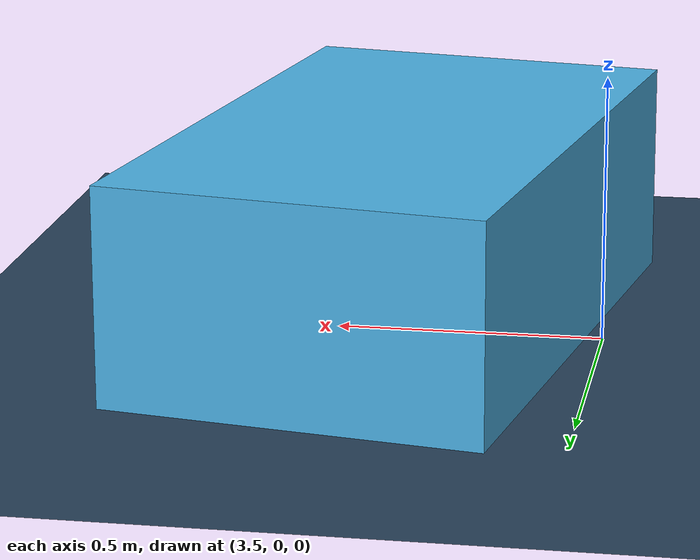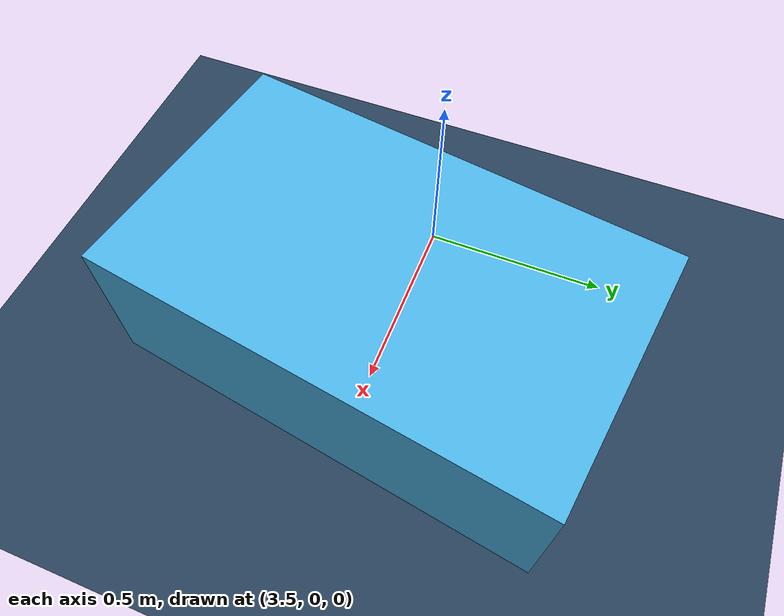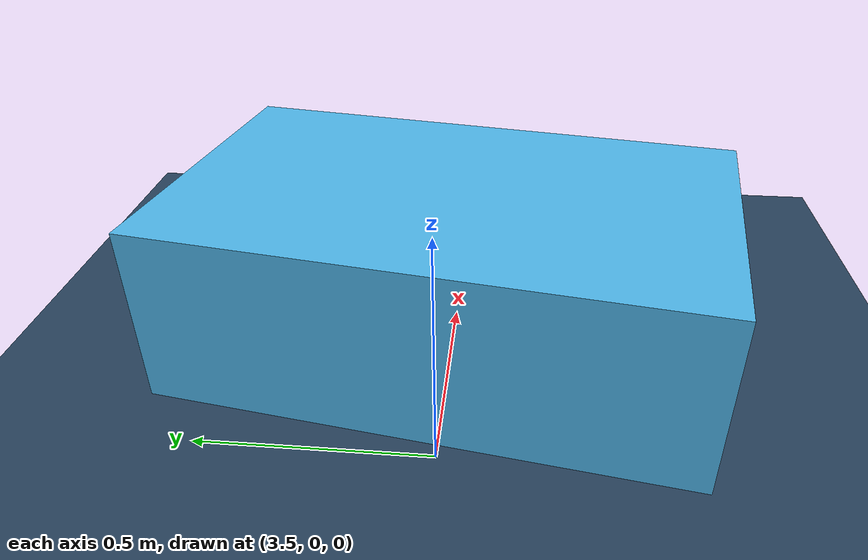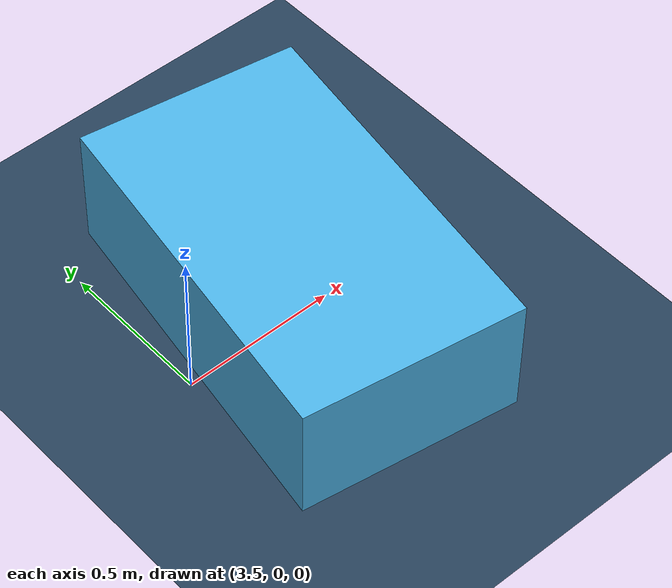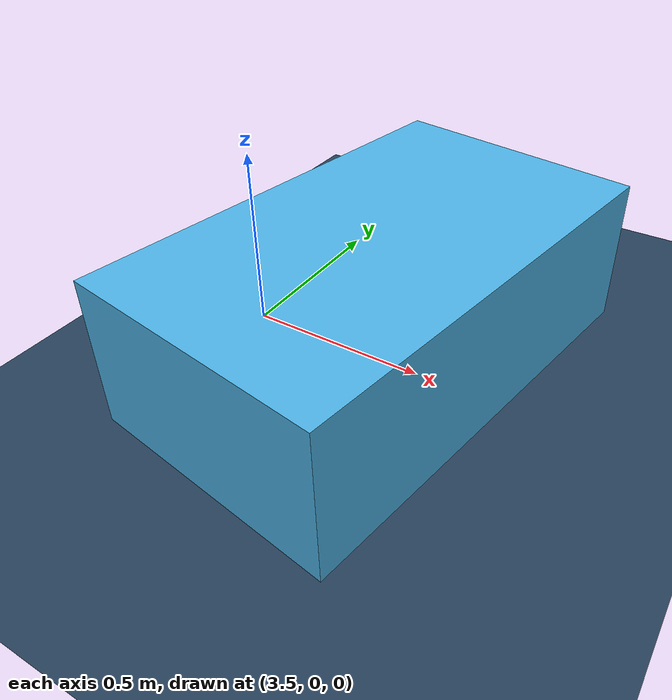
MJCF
<mujoco model="deploy_sim parkour climb 15">
  <statistic center="4.0 0 0.60" extent="6.0"/>

  <visual>
    <headlight diffuse="0.6 0.6 0.6" ambient="0.3 0.3 0.3" specular="0 0 0"/>
    <rgba haze="0.15 0.25 0.35 1"/>
    <global azimuth="-130" elevation="-20"/>
  </visual>

  <asset>
    <texture
      type="skybox"
      builtin="gradient"
      rgb1="0.3 0.5 0.7"
      rgb2="0 0 0"
      width="512"
      height="3072"
    />
    <texture
      type="2d"
      name="groundplane_texture"
      builtin="checker"
      mark="edge"
      rgb1="0.20 0.30 0.40"
      rgb2="0.10 0.20 0.30"
      markrgb="0.8 0.8 0.8"
      width="300"
      height="300"
    />
    <material
      name="groundplane"
      texture="groundplane_texture"
      texuniform="true"
      texrepeat="5 5"
      reflectance="0.2"
    />
    <material name="real_parkour_obstacle" rgba="0.30 0.70 0.90 1"/>
    <mesh
      name="real_parkour_climb_15"
      file="terrains/climb_15/box_models/box1.obj"
      scale="0.7415730337078652 0.7415730337078652 0.7415730337078652"
    />
  </asset>

  <worldbody>
    <light pos="4 0 8" dir="0 0 -1" directional="true"/>
    <geom
      name="floor"
      type="plane"
      size="0 0 0.05"
      friction="0.9 0.005 0.0001"
      material="groundplane"
    />

    <body
      name="real_parkour_climb_15"
      pos="3.6807114171834265 -0.19159992245654367 0"
      quat="0.54770673041174356 0 0 -0.83667038758502599"
    >
      <geom
        name="real_parkour_climb_15_visual"
        type="mesh"
        mesh="real_parkour_climb_15"
        pos="0 0 -0.07415730337078652"
        group="2"
        contype="0"
        conaffinity="0"
        rgba="0.30 0.70 0.90 0.50"
      />
      <geom
        name="real_parkour_climb_15_collision"
        type="mesh"
        mesh="real_parkour_climb_15"
        pos="0 0 -0.07415730337078652"
        group="0"
        contype="1"
        conaffinity="1"
        condim="3"
        friction="0.9 0.005 0.0001"
        material="real_parkour_obstacle"
      />
    </body>
  </worldbody>
</mujoco>
